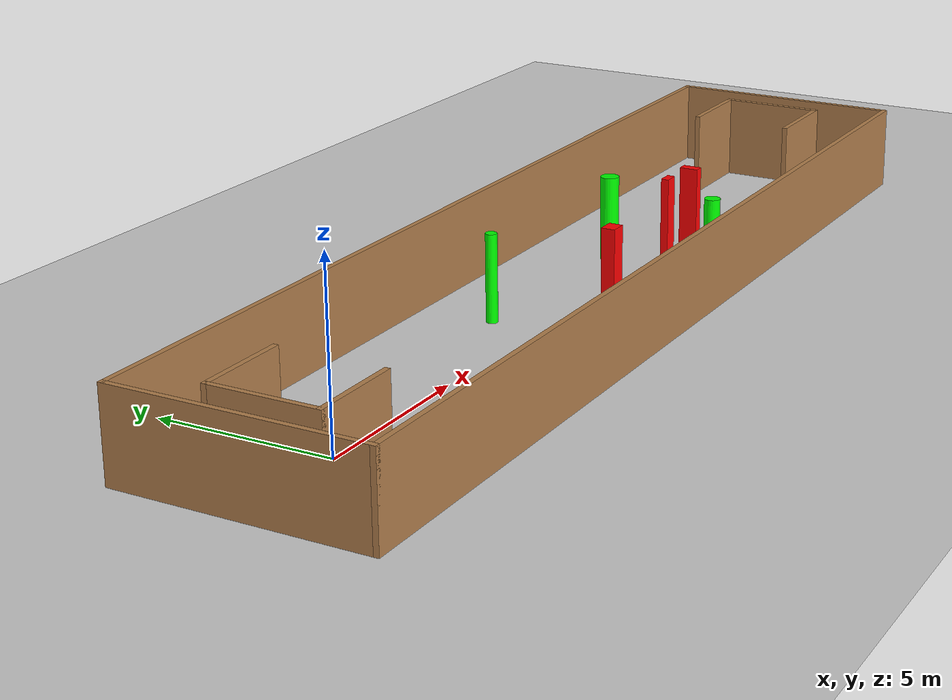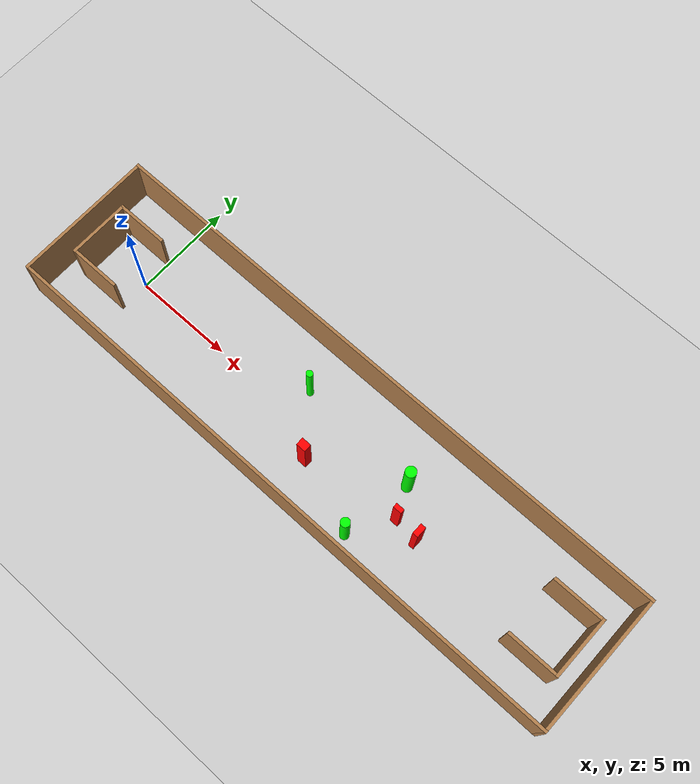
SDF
<sdf version="1.7">
 <world name="default">
  <light name="sun" type="directional">
   <pose>0 0 10 0 -0 0</pose>
   <diffuse>0.8 0.8 0.8 1</diffuse>
   <specular>0.2 0.2 0.2 1</specular>
   <attenuation>
    <range>1000</range>
    <constant>0.9</constant>
    <linear>0.01</linear>
    <quadratic>0.001</quadratic>
   </attenuation>
   <direction>-0.5 0.1 -0.9</direction>
   <spot><inner_angle>0</inner_angle><outer_angle>0</outer_angle><falloff>0</falloff></spot>
  </light>
  <model name="ground_plane">
   <static>1</static>
   <link name="link">
    <collision name="collision">
     <geometry><plane><normal>0 0 1</normal><size>100 100</size></plane></geometry>
     <surface>
      <contact><collide_bitmask>65535</collide_bitmask></contact>
      <friction><ode><mu>100</mu><mu2>50</mu2></ode></friction>
     </surface>
    </collision>
    <visual name="visual">
     <cast_shadows>0</cast_shadows>
     <geometry><plane><normal>0 0 1</normal><size>100 100</size></plane></geometry>
     <material>
      <script><uri>file://media/materials/scripts/gazebo.material</uri><name>Gazebo/Grey</name></script>
     </material>
    </visual>
   </link>
  </model>
  <gravity>0 0 -9.8</gravity>
  <magnetic_field>6e-06 2.3e-05 -4.2e-05</magnetic_field>
  <atmosphere type="adiabatic"/>
  <physics type="ode">
   <max_step_size>0.001</max_step_size>
   <real_time_factor>1</real_time_factor>
   <real_time_update_rate>1000</real_time_update_rate>
  </physics>
  <scene><ambient>0.4 0.4 0.4 1</ambient><background>0.7 0.7 0.7 1</background><shadows>1</shadows></scene>
  <spherical_coordinates>
   <surface_model>EARTH_WGS84</surface_model>
   <latitude_deg>0</latitude_deg>
   <longitude_deg>0</longitude_deg>
   <elevation>0</elevation>
   <heading_deg>0</heading_deg>
  </spherical_coordinates>
  <model name="my_base_walls">
   <link name="Wall_0">
    <collision name="Wall_0_Collision">
     <geometry><box><size>7.15 0.15 2.5</size></box></geometry>
     <pose>0 0 1.25 0 -0 0</pose>
    </collision>
    <visual name="Wall_0_Visual">
     <pose>0 0 1.25 0 -0 0</pose>
     <geometry><box><size>7.15 0.15 2.5</size></box></geometry>
     <material>
      <script><uri>file://media/materials/scripts/gazebo.material</uri><name>Gazebo/Wood</name></script>
      <ambient>1 1 1 1</ambient>
     </material>
     <meta><layer>0</layer></meta>
    </visual>
    <pose>-15 0 0 0 -0 1.5708</pose>
   </link>
   <link name="Wall_10">
    <collision name="Wall_10_Collision">
     <geometry><box><size>2.65 0.15 2.5</size></box></geometry>
     <pose>0 0 1.25 0 -0 0</pose>
    </collision>
    <visual name="Wall_10_Visual">
     <pose>0 0 1.25 0 -0 0</pose>
     <geometry><box><size>2.65 0.15 2.5</size></box></geometry>
     <material>
      <script><uri>file://media/materials/scripts/gazebo.material</uri><name>Gazebo/Wood</name></script>
      <ambient>1 1 1 1</ambient>
     </material>
     <meta><layer>0</layer></meta>
    </visual>
    <pose>-12.75 -1.5 0 0 -0 0</pose>
   </link>
   <link name="Wall_12">
    <collision name="Wall_12_Collision">
     <geometry><box><size>2.65 0.15 2.5</size></box></geometry>
     <pose>0 0 1.25 0 -0 0</pose>
    </collision>
    <visual name="Wall_12_Visual">
     <pose>0 0 1.25 0 -0 0</pose>
     <geometry><box><size>2.65 0.15 2.5</size></box></geometry>
     <material>
      <script><uri>file://media/materials/scripts/gazebo.material</uri><name>Gazebo/Wood</name></script>
      <ambient>1 1 1 1</ambient>
     </material>
     <meta><layer>0</layer></meta>
    </visual>
    <pose>-12.75 1.5 0 0 -0 0</pose>
   </link>
   <link name="Wall_14">
    <collision name="Wall_14_Collision">
     <geometry><box><size>3.15 0.15 2.5</size></box></geometry>
     <pose>0 0 1.25 0 -0 0</pose>
    </collision>
    <visual name="Wall_14_Visual">
     <pose>0 0 1.25 0 -0 0</pose>
     <geometry><box><size>3.15 0.15 2.5</size></box></geometry>
     <material>
      <script><uri>file://media/materials/scripts/gazebo.material</uri><name>Gazebo/Wood</name></script>
      <ambient>1 1 1 1</ambient>
     </material>
     <meta><layer>0</layer></meta>
    </visual>
    <pose>14 0 0 0 -0 -1.5708</pose>
   </link>
   <link name="Wall_15">
    <collision name="Wall_15_Collision">
     <geometry><box><size>2.65 0.15 2.5</size></box></geometry>
     <pose>0 0 1.25 0 -0 0</pose>
    </collision>
    <visual name="Wall_15_Visual">
     <pose>0 0 1.25 0 -0 0</pose>
     <geometry><box><size>2.65 0.15 2.5</size></box></geometry>
     <material>
      <script><uri>file://media/materials/scripts/gazebo.material</uri><name>Gazebo/Wood</name></script>
      <ambient>1 1 1 1</ambient>
     </material>
     <meta><layer>0</layer></meta>
    </visual>
    <pose>12.75 -1.5 0 0 -0 3.14159</pose>
   </link>
   <link name="Wall_17">
    <collision name="Wall_17_Collision">
     <geometry><box><size>2.65 0.15 2.5</size></box></geometry>
     <pose>0 0 1.25 0 -0 0</pose>
    </collision>
    <visual name="Wall_17_Visual">
     <pose>0 0 1.25 0 -0 0</pose>
     <geometry><box><size>2.65 0.15 2.5</size></box></geometry>
     <material>
      <script><uri>file://media/materials/scripts/gazebo.material</uri><name>Gazebo/Wood</name></script>
      <ambient>1 1 1 1</ambient>
     </material>
     <meta><layer>0</layer></meta>
    </visual>
    <pose>12.75 1.5 0 0 -0 3.14159</pose>
   </link>
   <link name="Wall_2">
    <collision name="Wall_2_Collision">
     <geometry><box><size>30.15 0.15 2.5</size></box></geometry>
     <pose>0 0 1.25 0 -0 0</pose>
    </collision>
    <visual name="Wall_2_Visual">
     <pose>0 0 1.25 0 -0 0</pose>
     <geometry><box><size>30.15 0.15 2.5</size></box></geometry>
     <material>
      <script><uri>file://media/materials/scripts/gazebo.material</uri><name>Gazebo/Wood</name></script>
      <ambient>1 1 1 1</ambient>
     </material>
     <meta><layer>0</layer></meta>
    </visual>
    <pose>-0 -3.5 0 0 -0 0</pose>
   </link>
   <link name="Wall_4">
    <collision name="Wall_4_Collision">
     <geometry><box><size>30.15 0.15 2.5</size></box></geometry>
     <pose>0 0 1.25 0 -0 0</pose>
    </collision>
    <visual name="Wall_4_Visual">
     <pose>0 0 1.25 0 -0 0</pose>
     <geometry><box><size>30.15 0.15 2.5</size></box></geometry>
     <material>
      <script><uri>file://media/materials/scripts/gazebo.material</uri><name>Gazebo/Wood</name></script>
      <ambient>1 1 1 1</ambient>
     </material>
     <meta><layer>0</layer></meta>
    </visual>
    <pose>-0 3.5 0 0 -0 0</pose>
   </link>
   <link name="Wall_6">
    <collision name="Wall_6_Collision">
     <geometry><box><size>7.15 0.15 2.5</size></box></geometry>
     <pose>0 0 1.25 0 -0 0</pose>
    </collision>
    <visual name="Wall_6_Visual">
     <pose>0 0 1.25 0 -0 0</pose>
     <geometry><box><size>7.15 0.15 2.5</size></box></geometry>
     <material>
      <script><uri>file://media/materials/scripts/gazebo.material</uri><name>Gazebo/Wood</name></script>
      <ambient>1 1 1 1</ambient>
     </material>
     <meta><layer>0</layer></meta>
    </visual>
    <pose>15 0 0 0 -0 -1.5708</pose>
   </link>
   <link name="Wall_9">
    <collision name="Wall_9_Collision">
     <geometry><box><size>3.15 0.15 2.5</size></box></geometry>
     <pose>0 0 1.25 0 -0 0</pose>
    </collision>
    <visual name="Wall_9_Visual">
     <pose>0 0 1.25 0 -0 0</pose>
     <geometry><box><size>3.15 0.15 2.5</size></box></geometry>
     <material>
      <script><uri>file://media/materials/scripts/gazebo.material</uri><name>Gazebo/Wood</name></script>
      <ambient>1 1 1 1</ambient>
     </material>
     <meta><layer>0</layer></meta>
    </visual>
    <pose>-14 0 0 0 -0 -1.5708</pose>
   </link>
   <static>1</static>
   <pose>11.5 0 0 0 -0 0</pose>
  </model>
  <model name="cylinder1">
   <static>1</static>
   <link name="link">
    <inertial>
     <mass>1</mass>
     <inertia><ixx>0.5</ixx><ixy>0</ixy><ixz>0</ixz><iyy>0.5</iyy><iyz>0</iyz><izz>1</izz></inertia>
    </inertial>
    <collision name="collision">
     <geometry><cylinder><radius>0.2680364145624619</radius><length>2.5</length></cylinder></geometry>
    </collision>
    <visual name="visual">
     <geometry><cylinder><radius>0.2680364145624619</radius><length>2.5</length></cylinder></geometry>
     <material>
      <ambient>0 1 0 1</ambient>
      <diffuse>0 1 0 1</diffuse>
      <specular>0.1 0.1 0.1 1</specular>
      <emissive>0 0 0 0</emissive>
     </material>
    </visual>
   </link>
   <pose>15.582865834212663 0.9203615609914619 1.25 0 0 0</pose>
  </model>
  <model name="cylinder2">
   <static>1</static>
   <link name="link">
    <inertial>
     <mass>1</mass>
     <inertia><ixx>0.5</ixx><ixy>0</ixy><ixz>0</ixz><iyy>0.5</iyy><iyz>0</iyz><izz>1</izz></inertia>
    </inertial>
    <collision name="collision">
     <geometry><cylinder><radius>0.16337145617747661</radius><length>2.5</length></cylinder></geometry>
    </collision>
    <visual name="visual">
     <geometry><cylinder><radius>0.16337145617747661</radius><length>2.5</length></cylinder></geometry>
     <material>
      <ambient>0 1 0 1</ambient>
      <diffuse>0 1 0 1</diffuse>
      <specular>0.1 0.1 0.1 1</specular>
      <emissive>0 0 0 0</emissive>
     </material>
    </visual>
   </link>
   <pose>9.381437968257401 1.286935381647825 1.25 0 0 0</pose>
  </model>
  <model name="cylinder3">
   <static>1</static>
   <link name="link">
    <inertial>
     <mass>1</mass>
     <inertia><ixx>0.5</ixx><ixy>0</ixy><ixz>0</ixz><iyy>0.5</iyy><iyz>0</iyz><izz>1</izz></inertia>
    </inertial>
    <collision name="collision">
     <geometry><cylinder><radius>0.22721176104303473</radius><length>2.5</length></cylinder></geometry>
    </collision>
    <visual name="visual">
     <geometry><cylinder><radius>0.22721176104303473</radius><length>2.5</length></cylinder></geometry>
     <material>
      <ambient>0 1 0 1</ambient>
      <diffuse>0 1 0 1</diffuse>
      <specular>0.1 0.1 0.1 1</specular>
      <emissive>0 0 0 0</emissive>
     </material>
    </visual>
   </link>
   <pose>14.994283610666779 -2.5832298198898376 1.25 0 0 0</pose>
  </model>
  <model name="box1">
   <static>1</static>
   <link name="link">
    <inertial>
     <mass>1</mass>
     <inertia><ixx>0.083</ixx><ixy>0</ixy><ixz>0</ixz><iyy>0.083</iyy><iyz>0</iyz><izz>0.083</izz></inertia>
    </inertial>
    <collision name="collision">
     <geometry><box><size>0.4818590737907851 0.3955658234795765 2.5</size></box></geometry>
    </collision>
    <visual name="visual">
     <geometry><box><size>0.4818590737907851 0.3955658234795765 2.5</size></box></geometry>
     <material>
      <ambient>1 0 0 1</ambient>
      <diffuse>1 0 0 1</diffuse>
      <specular>0.1 0.1 0.1 1</specular>
      <emissive>0 0 0 0</emissive>
     </material>
    </visual>
    <sensor name="my_contact" type="contact">
     <contact><collision>box_collision</collision><topic>__default_topic__</topic></contact>
    </sensor>
   </link>
   <pose>11.399018794264455 -1.2680558413254737 1.25 0 0 0</pose>
  </model>
  <model name="box2">
   <static>1</static>
   <link name="link">
    <inertial>
     <mass>1</mass>
     <inertia><ixx>0.083</ixx><ixy>0</ixy><ixz>0</ixz><iyy>0.083</iyy><iyz>0</iyz><izz>0.083</izz></inertia>
    </inertial>
    <collision name="collision">
     <geometry><box><size>0.43090359986993637 0.22353246560983453 2.5</size></box></geometry>
    </collision>
    <visual name="visual">
     <geometry><box><size>0.43090359986993637 0.22353246560983453 2.5</size></box></geometry>
     <material>
      <ambient>1 0 0 1</ambient>
      <diffuse>1 0 0 1</diffuse>
      <specular>0.1 0.1 0.1 1</specular>
      <emissive>0 0 0 0</emissive>
     </material>
    </visual>
    <sensor name="my_contact" type="contact">
     <contact><collision>box_collision</collision><topic>__default_topic__</topic></contact>
    </sensor>
   </link>
   <pose>16.24936347502971 -0.6209594057626013 1.25 0 0 0</pose>
  </model>
  <model name="box3">
   <static>1</static>
   <link name="link">
    <inertial>
     <mass>1</mass>
     <inertia><ixx>0.083</ixx><ixy>0</ixy><ixz>0</ixz><iyy>0.083</iyy><iyz>0</iyz><izz>0.083</izz></inertia>
    </inertial>
    <collision name="collision">
     <geometry><box><size>0.2781118141149787 0.5434054095778804 2.5</size></box></geometry>
    </collision>
    <visual name="visual">
     <geometry><box><size>0.2781118141149787 0.5434054095778804 2.5</size></box></geometry>
     <material>
      <ambient>1 0 0 1</ambient>
      <diffuse>1 0 0 1</diffuse>
      <specular>0.1 0.1 0.1 1</specular>
      <emissive>0 0 0 0</emissive>
     </material>
    </visual>
    <sensor name="my_contact" type="contact">
     <contact><collision>box_collision</collision><topic>__default_topic__</topic></contact>
    </sensor>
   </link>
   <pose>17.50759775924883 -0.7550117922795065 1.25 0 0 0</pose>
  </model>
 </world>
</sdf>
